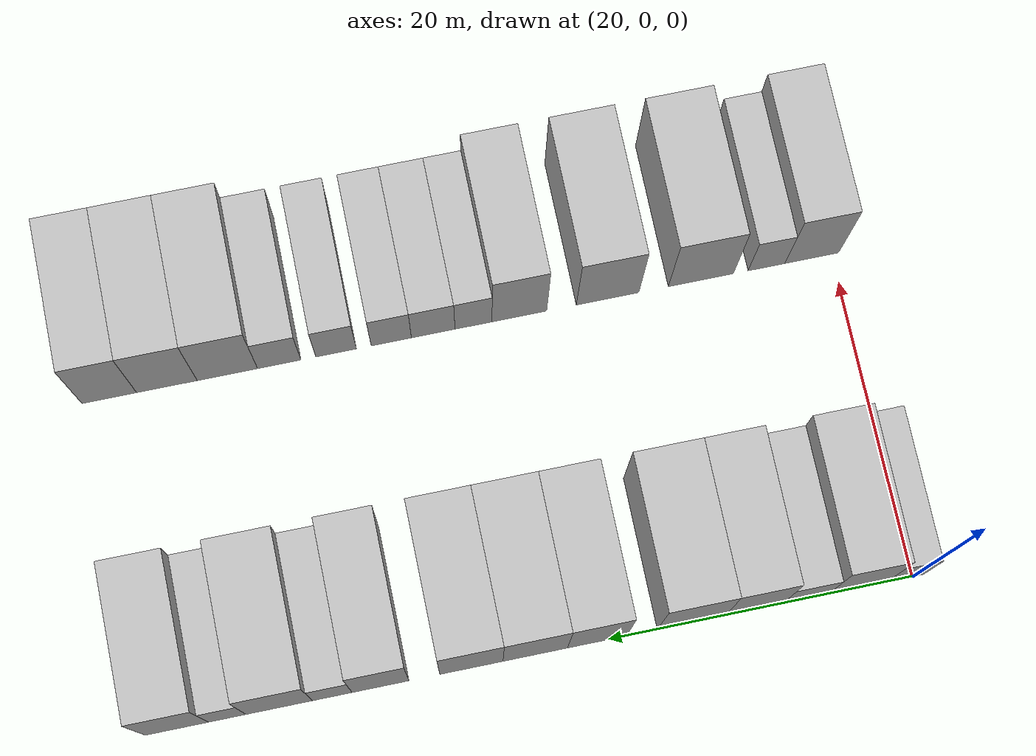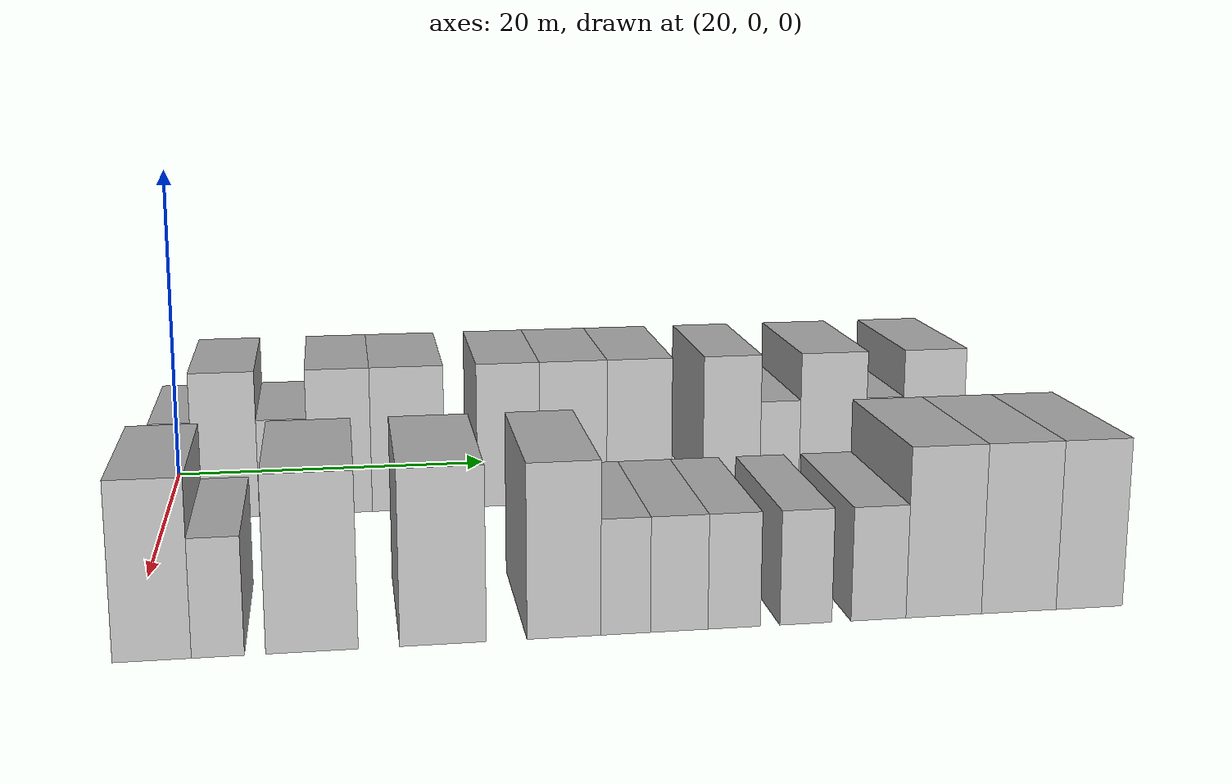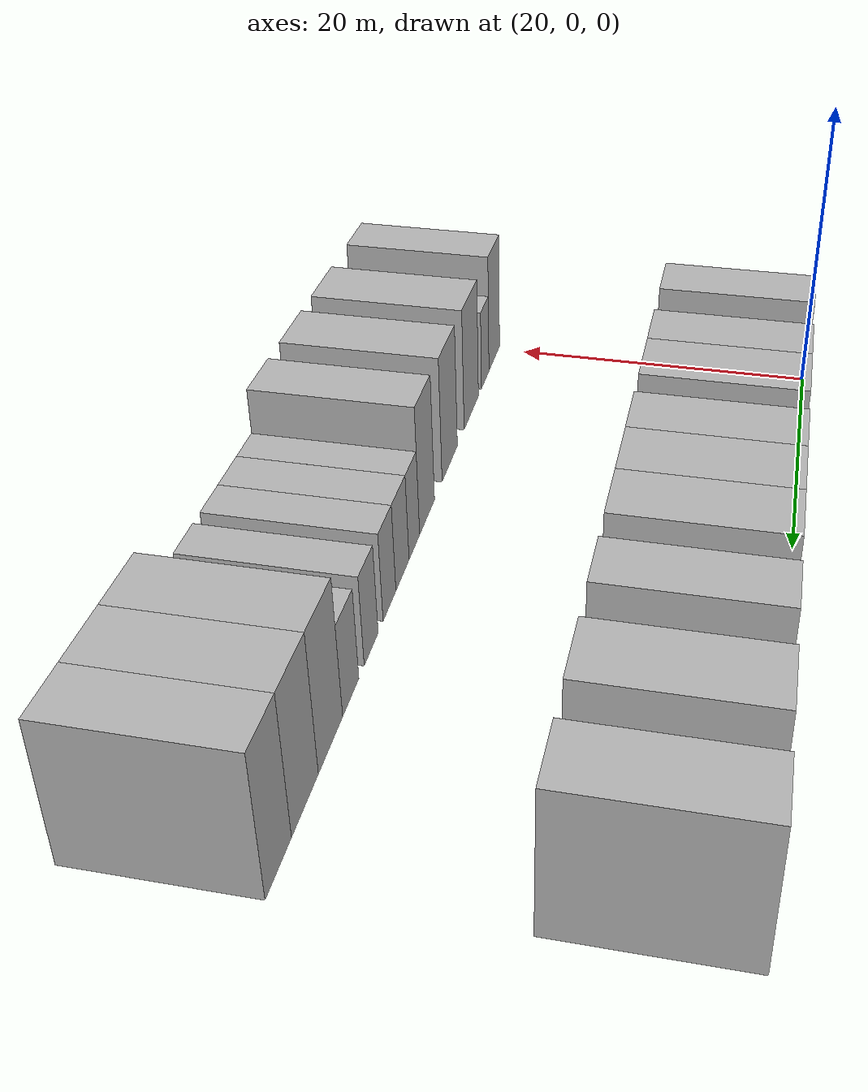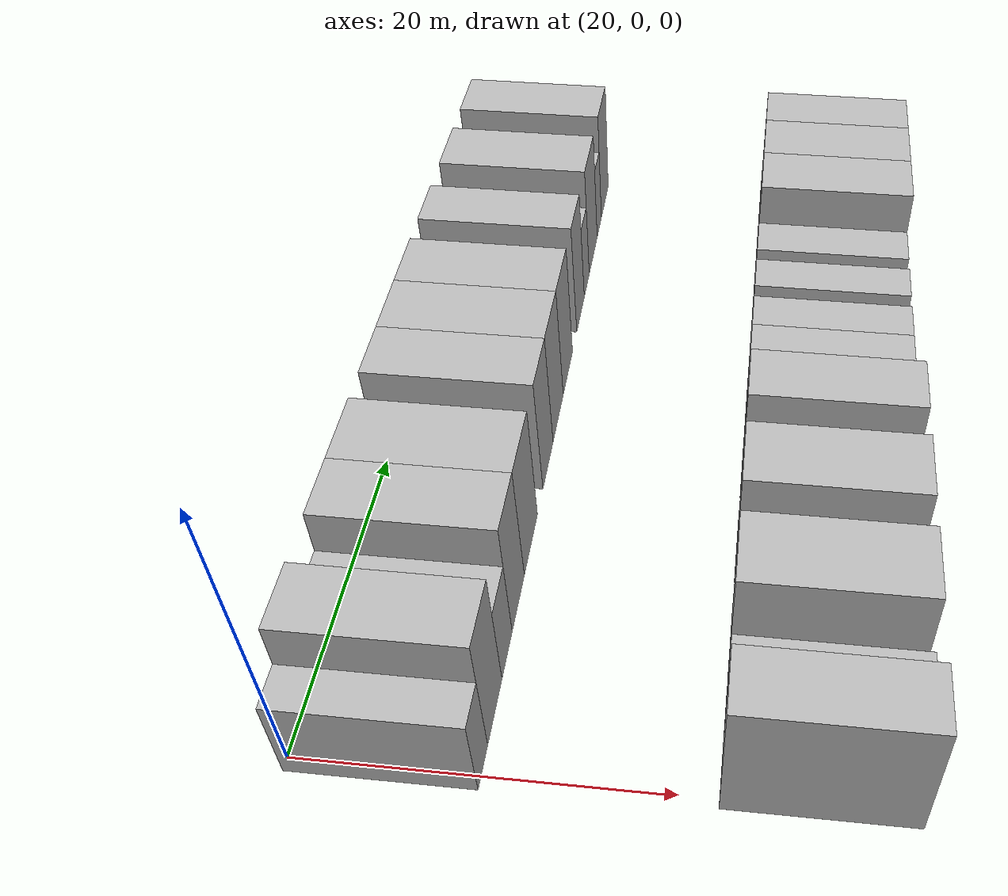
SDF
<sdf version="1.6">
 <world name="default">
  <model name="building_56">
   <static>1</static>
   <pose>25.0000 0.4780 0 0.000000 0.000000 0.000000</pose>
   <link name="link">
    <pose>0 0 3.00 0 0 0</pose>
    <collision name="collision"><geometry><box><size>10.0000 2.4449 6.0000</size></box></geometry></collision>
    <visual name="visual">
     <cast_shadows>0</cast_shadows>
     <geometry><box><size>10.0000 2.4449 6.0000</size></box></geometry>
     <material>
      <script>
       <uri>model://HANNAS_wall/materials/scripts</uri>
       <uri>model://HANNAS_wall/materials/textures</uri>
       <name>vrc/HANNAS_wall</name>
      </script>
     </material>
    </visual>
   </link>
  </model>
  <model name="building_57">
   <static>1</static>
   <pose>25.0000 3.6327 0 0.000000 0.000000 0.000000</pose>
   <link name="link">
    <pose>0 0 4.50 0 0 0</pose>
    <collision name="collision"><geometry><box><size>10.0000 3.8645 9.0000</size></box></geometry></collision>
    <visual name="visual">
     <cast_shadows>0</cast_shadows>
     <geometry><box><size>10.0000 3.8645 9.0000</size></box></geometry>
     <material>
      <script>
       <uri>model://HANNAS_wall/materials/scripts</uri>
       <uri>model://HANNAS_wall/materials/textures</uri>
       <name>vrc/HANNAS_wall</name>
      </script>
     </material>
    </visual>
   </link>
  </model>
  <model name="building_58">
   <static>1</static>
   <pose>25.0000 7.0509 0 0.000000 0.000000 0.000000</pose>
   <link name="link">
    <pose>0 0 3.00 0 0 0</pose>
    <collision name="collision"><geometry><box><size>10.0000 2.9720 6.0000</size></box></geometry></collision>
    <visual name="visual">
     <cast_shadows>0</cast_shadows>
     <geometry><box><size>10.0000 2.9720 6.0000</size></box></geometry>
     <material>
      <script>
       <uri>model://HANNAS_wall/materials/scripts</uri>
       <uri>model://HANNAS_wall/materials/textures</uri>
       <name>vrc/HANNAS_wall</name>
      </script>
     </material>
    </visual>
   </link>
  </model>
  <model name="building_59">
   <static>1</static>
   <pose>25.0000 10.4490 0 0.000000 0.000000 0.000000</pose>
   <link name="link">
    <pose>0 0 4.50 0 0 0</pose>
    <collision name="collision"><geometry><box><size>10.0000 3.8241 9.0000</size></box></geometry></collision>
    <visual name="visual">
     <cast_shadows>0</cast_shadows>
     <geometry><box><size>10.0000 3.8241 9.0000</size></box></geometry>
     <material>
      <script>
       <uri>model://HANNAS_wall/materials/scripts</uri>
       <uri>model://HANNAS_wall/materials/textures</uri>
       <name>vrc/HANNAS_wall</name>
      </script>
     </material>
    </visual>
   </link>
  </model>
  <model name="building_60">
   <static>1</static>
   <pose>25.0000 14.5827 0 0.000000 0.000000 0.000000</pose>
   <link name="link">
    <pose>0 0 4.50 0 0 0</pose>
    <collision name="collision"><geometry><box><size>10.0000 4.4433 9.0000</size></box></geometry></collision>
    <visual name="visual">
     <cast_shadows>0</cast_shadows>
     <geometry><box><size>10.0000 4.4433 9.0000</size></box></geometry>
     <material>
      <script>
       <uri>model://HANNAS_wall/materials/scripts</uri>
       <uri>model://HANNAS_wall/materials/textures</uri>
       <name>vrc/HANNAS_wall</name>
      </script>
     </material>
    </visual>
   </link>
  </model>
  <model name="building_61">
   <static>1</static>
   <pose>25.0000 20.7386 0 0.000000 0.000000 0.000000</pose>
   <link name="link">
    <pose>0 0 4.50 0 0 0</pose>
    <collision name="collision"><geometry><box><size>10.0000 3.8686 9.0000</size></box></geometry></collision>
    <visual name="visual">
     <cast_shadows>0</cast_shadows>
     <geometry><box><size>10.0000 3.8686 9.0000</size></box></geometry>
     <material>
      <script>
       <uri>model://HANNAS_wall/materials/scripts</uri>
       <uri>model://HANNAS_wall/materials/textures</uri>
       <name>vrc/HANNAS_wall</name>
      </script>
     </material>
    </visual>
   </link>
  </model>
  <model name="building_62">
   <static>1</static>
   <pose>25.0000 24.7701 0 0.000000 0.000000 0.000000</pose>
   <link name="link">
    <pose>0 0 4.50 0 0 0</pose>
    <collision name="collision"><geometry><box><size>10.0000 4.1943 9.0000</size></box></geometry></collision>
    <visual name="visual">
     <cast_shadows>0</cast_shadows>
     <geometry><box><size>10.0000 4.1943 9.0000</size></box></geometry>
     <material>
      <script>
       <uri>model://HANNAS_wall/materials/scripts</uri>
       <uri>model://HANNAS_wall/materials/textures</uri>
       <name>vrc/HANNAS_wall</name>
      </script>
     </material>
    </visual>
   </link>
  </model>
  <model name="building_63">
   <static>1</static>
   <pose>25.0000 28.9150 0 0.000000 0.000000 0.000000</pose>
   <link name="link">
    <pose>0 0 4.50 0 0 0</pose>
    <collision name="collision"><geometry><box><size>10.0000 4.0955 9.0000</size></box></geometry></collision>
    <visual name="visual">
     <cast_shadows>0</cast_shadows>
     <geometry><box><size>10.0000 4.0955 9.0000</size></box></geometry>
     <material>
      <script>
       <uri>model://HANNAS_wall/materials/scripts</uri>
       <uri>model://HANNAS_wall/materials/textures</uri>
       <name>vrc/HANNAS_wall</name>
      </script>
     </material>
    </visual>
   </link>
  </model>
  <model name="building_64">
   <static>1</static>
   <pose>25.0000 34.7984 0 0.000000 0.000000 0.000000</pose>
   <link name="link">
    <pose>0 0 4.50 0 0 0</pose>
    <collision name="collision"><geometry><box><size>10.0000 3.6713 9.0000</size></box></geometry></collision>
    <visual name="visual">
     <cast_shadows>0</cast_shadows>
     <geometry><box><size>10.0000 3.6713 9.0000</size></box></geometry>
     <material>
      <script>
       <uri>model://HANNAS_wall/materials/scripts</uri>
       <uri>model://HANNAS_wall/materials/textures</uri>
       <name>vrc/HANNAS_wall</name>
      </script>
     </material>
    </visual>
   </link>
  </model>
  <model name="building_65">
   <static>1</static>
   <pose>25.0000 37.9108 0 0.000000 0.000000 0.000000</pose>
   <link name="link">
    <pose>0 0 3.00 0 0 0</pose>
    <collision name="collision"><geometry><box><size>10.0000 2.5535 6.0000</size></box></geometry></collision>
    <visual name="visual">
     <cast_shadows>0</cast_shadows>
     <geometry><box><size>10.0000 2.5535 6.0000</size></box></geometry>
     <material>
      <script>
       <uri>model://HANNAS_wall/materials/scripts</uri>
       <uri>model://HANNAS_wall/materials/textures</uri>
       <name>vrc/HANNAS_wall</name>
      </script>
     </material>
    </visual>
   </link>
  </model>
  <model name="building_66">
   <static>1</static>
   <pose>25.0000 41.3335 0 0.000000 0.000000 0.000000</pose>
   <link name="link">
    <pose>0 0 4.50 0 0 0</pose>
    <collision name="collision"><geometry><box><size>10.0000 4.2920 9.0000</size></box></geometry></collision>
    <visual name="visual">
     <cast_shadows>0</cast_shadows>
     <geometry><box><size>10.0000 4.2920 9.0000</size></box></geometry>
     <material>
      <script>
       <uri>model://HANNAS_wall/materials/scripts</uri>
       <uri>model://HANNAS_wall/materials/textures</uri>
       <name>vrc/HANNAS_wall</name>
      </script>
     </material>
    </visual>
   </link>
  </model>
  <model name="building_67">
   <static>1</static>
   <pose>25.0000 44.6829 0 0.000000 0.000000 0.000000</pose>
   <link name="link">
    <pose>0 0 3.00 0 0 0</pose>
    <collision name="collision"><geometry><box><size>10.0000 2.4066 6.0000</size></box></geometry></collision>
    <visual name="visual">
     <cast_shadows>0</cast_shadows>
     <geometry><box><size>10.0000 2.4066 6.0000</size></box></geometry>
     <material>
      <script>
       <uri>model://HANNAS_wall/materials/scripts</uri>
       <uri>model://HANNAS_wall/materials/textures</uri>
       <name>vrc/HANNAS_wall</name>
      </script>
     </material>
    </visual>
   </link>
  </model>
  <model name="building_68">
   <static>1</static>
   <pose>25.0000 47.9116 0 0.000000 0.000000 0.000000</pose>
   <link name="link">
    <pose>0 0 4.50 0 0 0</pose>
    <collision name="collision"><geometry><box><size>10.0000 4.0508 9.0000</size></box></geometry></collision>
    <visual name="visual">
     <cast_shadows>0</cast_shadows>
     <geometry><box><size>10.0000 4.0508 9.0000</size></box></geometry>
     <material>
      <script>
       <uri>model://HANNAS_wall/materials/scripts</uri>
       <uri>model://HANNAS_wall/materials/textures</uri>
       <name>vrc/HANNAS_wall</name>
      </script>
     </material>
    </visual>
   </link>
  </model>
  <model name="building_161">
   <static>1</static>
   <pose>47.0000 1.3575 0 0.000000 0.000000 0.000000</pose>
   <link name="link">
    <pose>0 0 4.50 0 0 0</pose>
    <collision name="collision"><geometry><box><size>10.0000 3.6845 9.0000</size></box></geometry></collision>
    <visual name="visual">
     <cast_shadows>0</cast_shadows>
     <geometry><box><size>10.0000 3.6845 9.0000</size></box></geometry>
     <material>
      <script>
       <uri>model://HANNAS_wall/materials/scripts</uri>
       <uri>model://HANNAS_wall/materials/textures</uri>
       <name>vrc/HANNAS_wall</name>
      </script>
     </material>
    </visual>
   </link>
  </model>
  <model name="building_162">
   <static>1</static>
   <pose>47.0000 4.4468 0 0.000000 0.000000 0.000000</pose>
   <link name="link">
    <pose>0 0 3.00 0 0 0</pose>
    <collision name="collision"><geometry><box><size>10.0000 2.4941 6.0000</size></box></geometry></collision>
    <visual name="visual">
     <cast_shadows>0</cast_shadows>
     <geometry><box><size>10.0000 2.4941 6.0000</size></box></geometry>
     <material>
      <script>
       <uri>model://HANNAS_wall/materials/scripts</uri>
       <uri>model://HANNAS_wall/materials/textures</uri>
       <name>vrc/HANNAS_wall</name>
      </script>
     </material>
    </visual>
   </link>
  </model>
  <model name="building_163">
   <static>1</static>
   <pose>47.0000 8.9043 0 0.000000 0.000000 0.000000</pose>
   <link name="link">
    <pose>0 0 4.50 0 0 0</pose>
    <collision name="collision"><geometry><box><size>10.0000 4.4208 9.0000</size></box></geometry></collision>
    <visual name="visual">
     <cast_shadows>0</cast_shadows>
     <geometry><box><size>10.0000 4.4208 9.0000</size></box></geometry>
     <material>
      <script>
       <uri>model://HANNAS_wall/materials/scripts</uri>
       <uri>model://HANNAS_wall/materials/textures</uri>
       <name>vrc/HANNAS_wall</name>
      </script>
     </material>
    </visual>
   </link>
  </model>
  <model name="building_164">
   <static>1</static>
   <pose>47.0000 15.2309 0 0.000000 0.000000 0.000000</pose>
   <link name="link">
    <pose>0 0 4.50 0 0 0</pose>
    <collision name="collision"><geometry><box><size>10.0000 4.2323 9.0000</size></box></geometry></collision>
    <visual name="visual">
     <cast_shadows>0</cast_shadows>
     <geometry><box><size>10.0000 4.2323 9.0000</size></box></geometry>
     <material>
      <script>
       <uri>model://HANNAS_wall/materials/scripts</uri>
       <uri>model://HANNAS_wall/materials/textures</uri>
       <name>vrc/HANNAS_wall</name>
      </script>
     </material>
    </visual>
   </link>
  </model>
  <model name="building_165">
   <static>1</static>
   <pose>47.0000 21.1918 0 0.000000 0.000000 0.000000</pose>
   <link name="link">
    <pose>0 0 4.50 0 0 0</pose>
    <collision name="collision"><geometry><box><size>10.0000 3.6895 9.0000</size></box></geometry></collision>
    <visual name="visual">
     <cast_shadows>0</cast_shadows>
     <geometry><box><size>10.0000 3.6895 9.0000</size></box></geometry>
     <material>
      <script>
       <uri>model://HANNAS_wall/materials/scripts</uri>
       <uri>model://HANNAS_wall/materials/textures</uri>
       <name>vrc/HANNAS_wall</name>
      </script>
     </material>
    </visual>
   </link>
  </model>
  <model name="building_166">
   <static>1</static>
   <pose>47.0000 24.2795 0 0.000000 0.000000 0.000000</pose>
   <link name="link">
    <pose>0 0 3.00 0 0 0</pose>
    <collision name="collision"><geometry><box><size>10.0000 2.4860 6.0000</size></box></geometry></collision>
    <visual name="visual">
     <cast_shadows>0</cast_shadows>
     <geometry><box><size>10.0000 2.4860 6.0000</size></box></geometry>
     <material>
      <script>
       <uri>model://HANNAS_wall/materials/scripts</uri>
       <uri>model://HANNAS_wall/materials/textures</uri>
       <name>vrc/HANNAS_wall</name>
      </script>
     </material>
    </visual>
   </link>
  </model>
  <model name="building_167">
   <static>1</static>
   <pose>47.0000 26.9838 0 0.000000 0.000000 0.000000</pose>
   <link name="link">
    <pose>0 0 3.00 0 0 0</pose>
    <collision name="collision"><geometry><box><size>10.0000 2.9225 6.0000</size></box></geometry></collision>
    <visual name="visual">
     <cast_shadows>0</cast_shadows>
     <geometry><box><size>10.0000 2.9225 6.0000</size></box></geometry>
     <material>
      <script>
       <uri>model://HANNAS_wall/materials/scripts</uri>
       <uri>model://HANNAS_wall/materials/textures</uri>
       <name>vrc/HANNAS_wall</name>
      </script>
     </material>
    </visual>
   </link>
  </model>
  <model name="building_168">
   <static>1</static>
   <pose>47.0000 29.7913 0 0.000000 0.000000 0.000000</pose>
   <link name="link">
    <pose>0 0 3.00 0 0 0</pose>
    <collision name="collision"><geometry><box><size>10.0000 2.6926 6.0000</size></box></geometry></collision>
    <visual name="visual">
     <cast_shadows>0</cast_shadows>
     <geometry><box><size>10.0000 2.6926 6.0000</size></box></geometry>
     <material>
      <script>
       <uri>model://HANNAS_wall/materials/scripts</uri>
       <uri>model://HANNAS_wall/materials/textures</uri>
       <name>vrc/HANNAS_wall</name>
      </script>
     </material>
    </visual>
   </link>
  </model>
  <model name="building_169">
   <static>1</static>
   <pose>47.0000 33.4901 0 0.000000 0.000000 0.000000</pose>
   <link name="link">
    <pose>0 0 3.00 0 0 0</pose>
    <collision name="collision"><geometry><box><size>10.0000 2.7049 6.0000</size></box></geometry></collision>
    <visual name="visual">
     <cast_shadows>0</cast_shadows>
     <geometry><box><size>10.0000 2.7049 6.0000</size></box></geometry>
     <material>
      <script>
       <uri>model://HANNAS_wall/materials/scripts</uri>
       <uri>model://HANNAS_wall/materials/textures</uri>
       <name>vrc/HANNAS_wall</name>
      </script>
     </material>
    </visual>
   </link>
  </model>
  <model name="building_170">
   <static>1</static>
   <pose>47.0000 37.2880 0 0.000000 0.000000 0.000000</pose>
   <link name="link">
    <pose>0 0 3.00 0 0 0</pose>
    <collision name="collision"><geometry><box><size>10.0000 2.8909 6.0000</size></box></geometry></collision>
    <visual name="visual">
     <cast_shadows>0</cast_shadows>
     <geometry><box><size>10.0000 2.8909 6.0000</size></box></geometry>
     <material>
      <script>
       <uri>model://HANNAS_wall/materials/scripts</uri>
       <uri>model://HANNAS_wall/materials/textures</uri>
       <name>vrc/HANNAS_wall</name>
      </script>
     </material>
    </visual>
   </link>
  </model>
  <model name="building_171">
   <static>1</static>
   <pose>47.0000 40.7414 0 0.000000 0.000000 0.000000</pose>
   <link name="link">
    <pose>0 0 4.50 0 0 0</pose>
    <collision name="collision"><geometry><box><size>10.0000 4.0159 9.0000</size></box></geometry></collision>
    <visual name="visual">
     <cast_shadows>0</cast_shadows>
     <geometry><box><size>10.0000 4.0159 9.0000</size></box></geometry>
     <material>
      <script>
       <uri>model://HANNAS_wall/materials/scripts</uri>
       <uri>model://HANNAS_wall/materials/textures</uri>
       <name>vrc/HANNAS_wall</name>
      </script>
     </material>
    </visual>
   </link>
  </model>
  <model name="building_172">
   <static>1</static>
   <pose>47.0000 44.7648 0 0.000000 0.000000 0.000000</pose>
   <link name="link">
    <pose>0 0 4.50 0 0 0</pose>
    <collision name="collision"><geometry><box><size>10.0000 4.0308 9.0000</size></box></geometry></collision>
    <visual name="visual">
     <cast_shadows>0</cast_shadows>
     <geometry><box><size>10.0000 4.0308 9.0000</size></box></geometry>
     <material>
      <script>
       <uri>model://HANNAS_wall/materials/scripts</uri>
       <uri>model://HANNAS_wall/materials/textures</uri>
       <name>vrc/HANNAS_wall</name>
      </script>
     </material>
    </visual>
   </link>
  </model>
  <model name="building_173">
   <static>1</static>
   <pose>47.0000 48.5904 0 0.000000 0.000000 0.000000</pose>
   <link name="link">
    <pose>0 0 4.50 0 0 0</pose>
    <collision name="collision"><geometry><box><size>10.0000 3.6203 9.0000</size></box></geometry></collision>
    <visual name="visual">
     <cast_shadows>0</cast_shadows>
     <geometry><box><size>10.0000 3.6203 9.0000</size></box></geometry>
     <material>
      <script>
       <uri>model://HANNAS_wall/materials/scripts</uri>
       <uri>model://HANNAS_wall/materials/textures</uri>
       <name>vrc/HANNAS_wall</name>
      </script>
     </material>
    </visual>
   </link>
  </model>
 </world>
</sdf>
